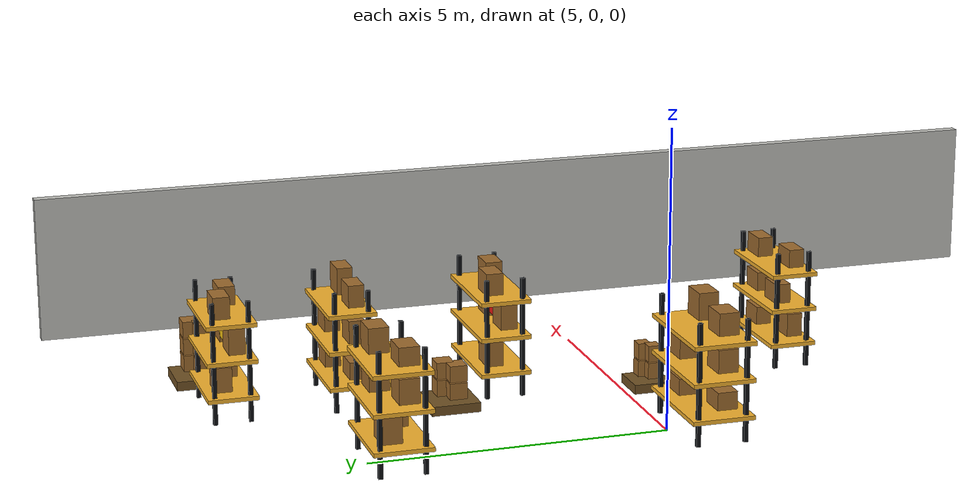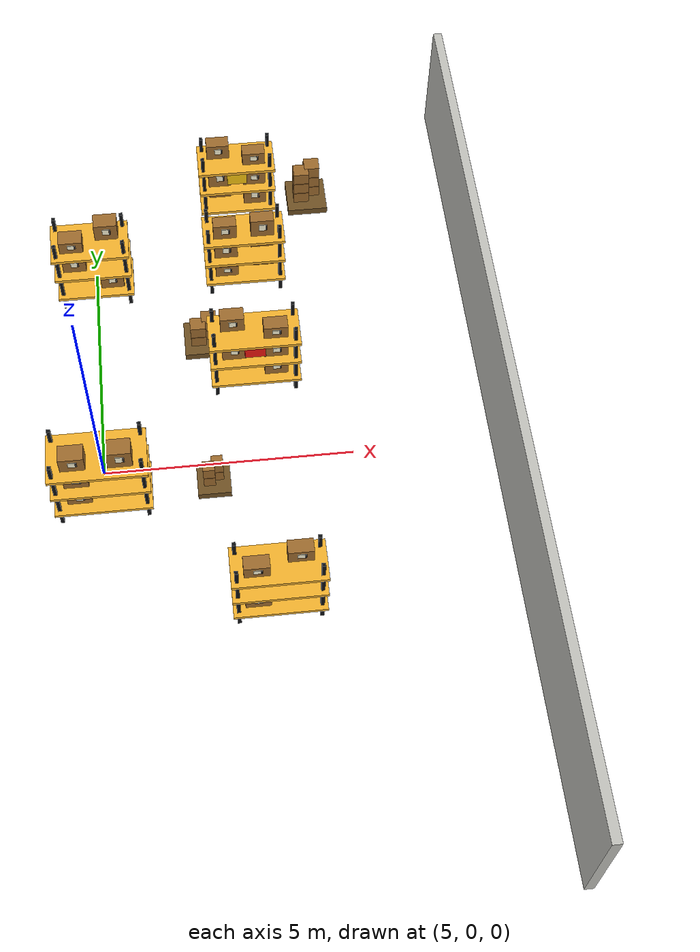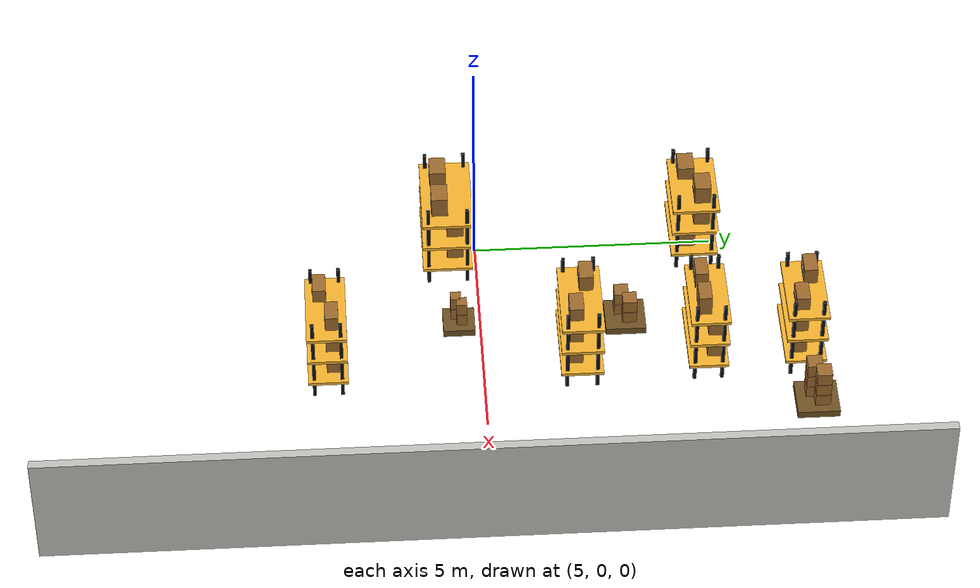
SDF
<sdf version="1.9">
 <world name="lidar_random_warehouse">
  <model name="right_wall">
   <static>true</static>
   <pose>12.910 0.000 1.300 0 0 0</pose>
   <link name="link">
    <collision name="collision"><geometry><box><size>0.180 18.000 2.600</size></box></geometry></collision>
    <visual name="visual">
     <geometry><box><size>0.180 18.000 2.600</size></box></geometry>
     <material><ambient>0.66 0.66 0.64 1</ambient><diffuse>0.76 0.76 0.74 1</diffuse></material>
    </visual>
   </link>
  </model>
  <model name="shelf_10">
   <static>true</static>
   <pose>8.200 -3.200 0 0 0 0</pose>
   <link name="link">
    <collision name="collision">
     <pose>0 0 1.025 0 0 0</pose>
     <geometry><box><size>1.629 0.642 2.050</size></box></geometry>
    </collision>
    <visual name="post_0">
     <pose>-0.779 -0.286 1.025 0 0 0</pose>
     <geometry><box><size>0.070 0.070 2.050</size></box></geometry>
     <material><ambient>0.03 0.04 0.05 1</ambient><diffuse>0.05 0.06 0.07 1</diffuse></material>
    </visual>
    <visual name="post_1">
     <pose>-0.779 0.286 1.025 0 0 0</pose>
     <geometry><box><size>0.070 0.070 2.050</size></box></geometry>
     <material><ambient>0.03 0.04 0.05 1</ambient><diffuse>0.05 0.06 0.07 1</diffuse></material>
    </visual>
    <visual name="post_2">
     <pose>0.779 -0.286 1.025 0 0 0</pose>
     <geometry><box><size>0.070 0.070 2.050</size></box></geometry>
     <material><ambient>0.03 0.04 0.05 1</ambient><diffuse>0.05 0.06 0.07 1</diffuse></material>
    </visual>
    <visual name="post_3">
     <pose>0.779 0.286 1.025 0 0 0</pose>
     <geometry><box><size>0.070 0.070 2.050</size></box></geometry>
     <material><ambient>0.03 0.04 0.05 1</ambient><diffuse>0.05 0.06 0.07 1</diffuse></material>
    </visual>
    <visual name="deck_1">
     <pose>0.000 0.000 0.420 0 0 0</pose>
     <geometry><box><size>1.769 0.822 0.070</size></box></geometry>
     <material><ambient>0.70 0.52 0.18 1</ambient><diffuse>0.96 0.70 0.18 1</diffuse></material>
    </visual>
    <visual name="box_1_-0.4">
     <pose>-0.407 -0.116 0.701 0 0 0</pose>
     <geometry><box><size>0.480 0.270 0.402</size></box></geometry>
     <material><ambient>0.44 0.28 0.11 1</ambient><diffuse>0.62 0.42 0.18 1</diffuse></material>
    </visual>
    <visual name="label_1_-0.4">
     <pose>-0.407 -0.255 0.729 0 0 0</pose>
     <geometry><box><size>0.134 0.012 0.153</size></box></geometry>
     <material><ambient>0.86 0.86 0.76 1</ambient><diffuse>0.98 0.96 0.84 1</diffuse></material>
    </visual>
    <visual name="barcode_1_-0.4">
     <pose>-0.321 -0.259 0.729 0 0 0</pose>
     <geometry><box><size>0.029 0.014 0.137</size></box></geometry>
     <material><ambient>0.02 0.02 0.02 1</ambient><diffuse>0.02 0.02 0.02 1</diffuse></material>
    </visual>
    <visual name="box_1_0.4">
     <pose>0.407 0.116 0.658 0 0 0</pose>
     <geometry><box><size>0.480 0.270 0.316</size></box></geometry>
     <material><ambient>0.44 0.28 0.11 1</ambient><diffuse>0.62 0.42 0.18 1</diffuse></material>
    </visual>
    <visual name="label_1_0.4">
     <pose>0.407 -0.023 0.685 0 0 0</pose>
     <geometry><box><size>0.134 0.012 0.120</size></box></geometry>
     <material><ambient>0.86 0.86 0.76 1</ambient><diffuse>0.98 0.96 0.84 1</diffuse></material>
    </visual>
    <visual name="barcode_1_0.4">
     <pose>0.494 -0.027 0.685 0 0 0</pose>
     <geometry><box><size>0.029 0.014 0.108</size></box></geometry>
     <material><ambient>0.02 0.02 0.02 1</ambient><diffuse>0.02 0.02 0.02 1</diffuse></material>
    </visual>
    <visual name="deck_2">
     <pose>0.000 0.000 1.040 0 0 0</pose>
     <geometry><box><size>1.769 0.822 0.070</size></box></geometry>
     <material><ambient>0.70 0.52 0.18 1</ambient><diffuse>0.96 0.70 0.18 1</diffuse></material>
    </visual>
    <visual name="box_2_-0.4">
     <pose>-0.407 0.116 1.288 0 0 0</pose>
     <geometry><box><size>0.480 0.270 0.336</size></box></geometry>
     <material><ambient>0.44 0.28 0.11 1</ambient><diffuse>0.62 0.42 0.18 1</diffuse></material>
    </visual>
    <visual name="label_2_-0.4">
     <pose>-0.407 -0.023 1.315 0 0 0</pose>
     <geometry><box><size>0.134 0.012 0.128</size></box></geometry>
     <material><ambient>0.86 0.86 0.76 1</ambient><diffuse>0.98 0.96 0.84 1</diffuse></material>
    </visual>
    <visual name="barcode_2_-0.4">
     <pose>-0.321 -0.027 1.315 0 0 0</pose>
     <geometry><box><size>0.029 0.014 0.114</size></box></geometry>
     <material><ambient>0.02 0.02 0.02 1</ambient><diffuse>0.02 0.02 0.02 1</diffuse></material>
    </visual>
    <visual name="box_2_0.4">
     <pose>0.407 0.116 1.282 0 0 0</pose>
     <geometry><box><size>0.480 0.270 0.325</size></box></geometry>
     <material><ambient>0.44 0.28 0.11 1</ambient><diffuse>0.62 0.42 0.18 1</diffuse></material>
    </visual>
    <visual name="label_2_0.4">
     <pose>0.407 -0.023 1.309 0 0 0</pose>
     <geometry><box><size>0.134 0.012 0.123</size></box></geometry>
     <material><ambient>0.86 0.86 0.76 1</ambient><diffuse>0.98 0.96 0.84 1</diffuse></material>
    </visual>
    <visual name="barcode_2_0.4">
     <pose>0.494 -0.027 1.309 0 0 0</pose>
     <geometry><box><size>0.029 0.014 0.110</size></box></geometry>
     <material><ambient>0.02 0.02 0.02 1</ambient><diffuse>0.02 0.02 0.02 1</diffuse></material>
    </visual>
    <visual name="deck_3">
     <pose>0.000 0.000 1.660 0 0 0</pose>
     <geometry><box><size>1.769 0.822 0.070</size></box></geometry>
     <material><ambient>0.70 0.52 0.18 1</ambient><diffuse>0.96 0.70 0.18 1</diffuse></material>
    </visual>
    <visual name="box_3_-0.4">
     <pose>-0.407 -0.116 1.898 0 0 0</pose>
     <geometry><box><size>0.480 0.270 0.315</size></box></geometry>
     <material><ambient>0.44 0.28 0.11 1</ambient><diffuse>0.62 0.42 0.18 1</diffuse></material>
    </visual>
    <visual name="label_3_-0.4">
     <pose>-0.407 -0.255 1.924 0 0 0</pose>
     <geometry><box><size>0.134 0.012 0.120</size></box></geometry>
     <material><ambient>0.86 0.86 0.76 1</ambient><diffuse>0.98 0.96 0.84 1</diffuse></material>
    </visual>
    <visual name="barcode_3_-0.4">
     <pose>-0.321 -0.259 1.924 0 0 0</pose>
     <geometry><box><size>0.029 0.014 0.107</size></box></geometry>
     <material><ambient>0.02 0.02 0.02 1</ambient><diffuse>0.02 0.02 0.02 1</diffuse></material>
    </visual>
    <visual name="box_3_0.4">
     <pose>0.407 0.116 1.909 0 0 0</pose>
     <geometry><box><size>0.480 0.270 0.338</size></box></geometry>
     <material><ambient>0.44 0.28 0.11 1</ambient><diffuse>0.62 0.42 0.18 1</diffuse></material>
    </visual>
    <visual name="label_3_0.4">
     <pose>0.407 -0.023 1.936 0 0 0</pose>
     <geometry><box><size>0.134 0.012 0.129</size></box></geometry>
     <material><ambient>0.86 0.86 0.76 1</ambient><diffuse>0.98 0.96 0.84 1</diffuse></material>
    </visual>
    <visual name="barcode_3_0.4">
     <pose>0.494 -0.027 1.936 0 0 0</pose>
     <geometry><box><size>0.029 0.014 0.115</size></box></geometry>
     <material><ambient>0.02 0.02 0.02 1</ambient><diffuse>0.02 0.02 0.02 1</diffuse></material>
    </visual>
   </link>
  </model>
  <model name="shelf_13">
   <static>true</static>
   <pose>5.000 -0.600 0 0 0 0</pose>
   <link name="link">
    <collision name="collision">
     <pose>0 0 1.025 0 0 0</pose>
     <geometry><box><size>1.766 0.877 2.050</size></box></geometry>
    </collision>
    <visual name="post_0">
     <pose>-0.848 -0.404 1.025 0 0 0</pose>
     <geometry><box><size>0.070 0.070 2.050</size></box></geometry>
     <material><ambient>0.03 0.04 0.05 1</ambient><diffuse>0.05 0.06 0.07 1</diffuse></material>
    </visual>
    <visual name="post_1">
     <pose>-0.848 0.404 1.025 0 0 0</pose>
     <geometry><box><size>0.070 0.070 2.050</size></box></geometry>
     <material><ambient>0.03 0.04 0.05 1</ambient><diffuse>0.05 0.06 0.07 1</diffuse></material>
    </visual>
    <visual name="post_2">
     <pose>0.848 -0.404 1.025 0 0 0</pose>
     <geometry><box><size>0.070 0.070 2.050</size></box></geometry>
     <material><ambient>0.03 0.04 0.05 1</ambient><diffuse>0.05 0.06 0.07 1</diffuse></material>
    </visual>
    <visual name="post_3">
     <pose>0.848 0.404 1.025 0 0 0</pose>
     <geometry><box><size>0.070 0.070 2.050</size></box></geometry>
     <material><ambient>0.03 0.04 0.05 1</ambient><diffuse>0.05 0.06 0.07 1</diffuse></material>
    </visual>
    <visual name="deck_1">
     <pose>0.000 0.000 0.420 0 0 0</pose>
     <geometry><box><size>1.906 1.057 0.070</size></box></geometry>
     <material><ambient>0.70 0.52 0.18 1</ambient><diffuse>0.96 0.70 0.18 1</diffuse></material>
    </visual>
    <visual name="box_1_-0.4">
     <pose>-0.442 -0.158 0.649 0 0 0</pose>
     <geometry><box><size>0.480 0.340 0.297</size></box></geometry>
     <material><ambient>0.44 0.28 0.11 1</ambient><diffuse>0.62 0.42 0.18 1</diffuse></material>
    </visual>
    <visual name="label_1_-0.4">
     <pose>-0.442 -0.332 0.674 0 0 0</pose>
     <geometry><box><size>0.134 0.012 0.113</size></box></geometry>
     <material><ambient>0.86 0.86 0.76 1</ambient><diffuse>0.98 0.96 0.84 1</diffuse></material>
    </visual>
    <visual name="barcode_1_-0.4">
     <pose>-0.355 -0.336 0.674 0 0 0</pose>
     <geometry><box><size>0.029 0.014 0.101</size></box></geometry>
     <material><ambient>0.02 0.02 0.02 1</ambient><diffuse>0.02 0.02 0.02 1</diffuse></material>
    </visual>
    <visual name="box_1_0.4">
     <pose>0.442 0.158 0.640 0 0 0</pose>
     <geometry><box><size>0.480 0.340 0.280</size></box></geometry>
     <material><ambient>0.44 0.28 0.11 1</ambient><diffuse>0.62 0.42 0.18 1</diffuse></material>
    </visual>
    <visual name="label_1_0.4">
     <pose>0.442 -0.016 0.666 0 0 0</pose>
     <geometry><box><size>0.134 0.012 0.107</size></box></geometry>
     <material><ambient>0.86 0.86 0.76 1</ambient><diffuse>0.98 0.96 0.84 1</diffuse></material>
    </visual>
    <visual name="barcode_1_0.4">
     <pose>0.528 -0.020 0.666 0 0 0</pose>
     <geometry><box><size>0.029 0.014 0.095</size></box></geometry>
     <material><ambient>0.02 0.02 0.02 1</ambient><diffuse>0.02 0.02 0.02 1</diffuse></material>
    </visual>
    <visual name="deck_2">
     <pose>0.000 0.000 1.040 0 0 0</pose>
     <geometry><box><size>1.906 1.057 0.070</size></box></geometry>
     <material><ambient>0.70 0.52 0.18 1</ambient><diffuse>0.96 0.70 0.18 1</diffuse></material>
    </visual>
    <visual name="box_2_-0.4">
     <pose>-0.442 -0.158 1.315 0 0 0</pose>
     <geometry><box><size>0.480 0.340 0.390</size></box></geometry>
     <material><ambient>0.44 0.28 0.11 1</ambient><diffuse>0.62 0.42 0.18 1</diffuse></material>
    </visual>
    <visual name="label_2_-0.4">
     <pose>-0.442 -0.332 1.343 0 0 0</pose>
     <geometry><box><size>0.134 0.012 0.148</size></box></geometry>
     <material><ambient>0.86 0.86 0.76 1</ambient><diffuse>0.98 0.96 0.84 1</diffuse></material>
    </visual>
    <visual name="barcode_2_-0.4">
     <pose>-0.355 -0.336 1.343 0 0 0</pose>
     <geometry><box><size>0.029 0.014 0.133</size></box></geometry>
     <material><ambient>0.02 0.02 0.02 1</ambient><diffuse>0.02 0.02 0.02 1</diffuse></material>
    </visual>
    <visual name="box_2_0.4">
     <pose>0.442 0.158 1.293 0 0 0</pose>
     <geometry><box><size>0.480 0.340 0.347</size></box></geometry>
     <material><ambient>0.44 0.28 0.11 1</ambient><diffuse>0.62 0.42 0.18 1</diffuse></material>
    </visual>
    <visual name="label_2_0.4">
     <pose>0.442 -0.016 1.320 0 0 0</pose>
     <geometry><box><size>0.134 0.012 0.132</size></box></geometry>
     <material><ambient>0.86 0.86 0.76 1</ambient><diffuse>0.98 0.96 0.84 1</diffuse></material>
    </visual>
    <visual name="barcode_2_0.4">
     <pose>0.528 -0.020 1.320 0 0 0</pose>
     <geometry><box><size>0.029 0.014 0.118</size></box></geometry>
     <material><ambient>0.02 0.02 0.02 1</ambient><diffuse>0.02 0.02 0.02 1</diffuse></material>
    </visual>
    <visual name="deck_3">
     <pose>0.000 0.000 1.660 0 0 0</pose>
     <geometry><box><size>1.906 1.057 0.070</size></box></geometry>
     <material><ambient>0.70 0.52 0.18 1</ambient><diffuse>0.96 0.70 0.18 1</diffuse></material>
    </visual>
    <visual name="box_3_-0.4">
     <pose>-0.442 -0.158 1.928 0 0 0</pose>
     <geometry><box><size>0.480 0.340 0.375</size></box></geometry>
     <material><ambient>0.44 0.28 0.11 1</ambient><diffuse>0.62 0.42 0.18 1</diffuse></material>
    </visual>
    <visual name="label_3_-0.4">
     <pose>-0.442 -0.332 1.955 0 0 0</pose>
     <geometry><box><size>0.134 0.012 0.143</size></box></geometry>
     <material><ambient>0.86 0.86 0.76 1</ambient><diffuse>0.98 0.96 0.84 1</diffuse></material>
    </visual>
    <visual name="barcode_3_-0.4">
     <pose>-0.355 -0.336 1.955 0 0 0</pose>
     <geometry><box><size>0.029 0.014 0.128</size></box></geometry>
     <material><ambient>0.02 0.02 0.02 1</ambient><diffuse>0.02 0.02 0.02 1</diffuse></material>
    </visual>
    <visual name="box_3_0.4">
     <pose>0.442 -0.158 1.968 0 0 0</pose>
     <geometry><box><size>0.480 0.340 0.456</size></box></geometry>
     <material><ambient>0.44 0.28 0.11 1</ambient><diffuse>0.62 0.42 0.18 1</diffuse></material>
    </visual>
    <visual name="label_3_0.4">
     <pose>0.442 -0.332 1.997 0 0 0</pose>
     <geometry><box><size>0.134 0.012 0.173</size></box></geometry>
     <material><ambient>0.86 0.86 0.76 1</ambient><diffuse>0.98 0.96 0.84 1</diffuse></material>
    </visual>
    <visual name="barcode_3_0.4">
     <pose>0.528 -0.336 1.997 0 0 0</pose>
     <geometry><box><size>0.029 0.014 0.155</size></box></geometry>
     <material><ambient>0.02 0.02 0.02 1</ambient><diffuse>0.02 0.02 0.02 1</diffuse></material>
    </visual>
   </link>
  </model>
  <model name="shelf_17">
   <static>true</static>
   <pose>8.200 2.000 0 0 0 0</pose>
   <link name="link">
    <collision name="collision">
     <pose>0 0 1.025 0 0 0</pose>
     <geometry><box><size>1.692 0.691 2.050</size></box></geometry>
    </collision>
    <visual name="post_0">
     <pose>-0.811 -0.311 1.025 0 0 0</pose>
     <geometry><box><size>0.070 0.070 2.050</size></box></geometry>
     <material><ambient>0.03 0.04 0.05 1</ambient><diffuse>0.05 0.06 0.07 1</diffuse></material>
    </visual>
    <visual name="post_1">
     <pose>-0.811 0.311 1.025 0 0 0</pose>
     <geometry><box><size>0.070 0.070 2.050</size></box></geometry>
     <material><ambient>0.03 0.04 0.05 1</ambient><diffuse>0.05 0.06 0.07 1</diffuse></material>
    </visual>
    <visual name="post_2">
     <pose>0.811 -0.311 1.025 0 0 0</pose>
     <geometry><box><size>0.070 0.070 2.050</size></box></geometry>
     <material><ambient>0.03 0.04 0.05 1</ambient><diffuse>0.05 0.06 0.07 1</diffuse></material>
    </visual>
    <visual name="post_3">
     <pose>0.811 0.311 1.025 0 0 0</pose>
     <geometry><box><size>0.070 0.070 2.050</size></box></geometry>
     <material><ambient>0.03 0.04 0.05 1</ambient><diffuse>0.05 0.06 0.07 1</diffuse></material>
    </visual>
    <visual name="deck_1">
     <pose>0.000 0.000 0.420 0 0 0</pose>
     <geometry><box><size>1.832 0.871 0.070</size></box></geometry>
     <material><ambient>0.70 0.52 0.18 1</ambient><diffuse>0.96 0.70 0.18 1</diffuse></material>
    </visual>
    <visual name="box_1_-0.4">
     <pose>-0.423 0.124 0.710 0 0 0</pose>
     <geometry><box><size>0.480 0.290 0.420</size></box></geometry>
     <material><ambient>0.44 0.28 0.11 1</ambient><diffuse>0.62 0.42 0.18 1</diffuse></material>
    </visual>
    <visual name="label_1_-0.4">
     <pose>-0.423 -0.025 0.739 0 0 0</pose>
     <geometry><box><size>0.134 0.012 0.160</size></box></geometry>
     <material><ambient>0.86 0.86 0.76 1</ambient><diffuse>0.98 0.96 0.84 1</diffuse></material>
    </visual>
    <visual name="barcode_1_-0.4">
     <pose>-0.337 -0.029 0.739 0 0 0</pose>
     <geometry><box><size>0.029 0.014 0.143</size></box></geometry>
     <material><ambient>0.02 0.02 0.02 1</ambient><diffuse>0.02 0.02 0.02 1</diffuse></material>
    </visual>
    <visual name="box_1_0.4">
     <pose>0.423 -0.124 0.727 0 0 0</pose>
     <geometry><box><size>0.480 0.290 0.455</size></box></geometry>
     <material><ambient>0.44 0.28 0.11 1</ambient><diffuse>0.62 0.42 0.18 1</diffuse></material>
    </visual>
    <visual name="label_1_0.4">
     <pose>0.423 -0.274 0.757 0 0 0</pose>
     <geometry><box><size>0.134 0.012 0.173</size></box></geometry>
     <material><ambient>0.86 0.86 0.76 1</ambient><diffuse>0.98 0.96 0.84 1</diffuse></material>
    </visual>
    <visual name="barcode_1_0.4">
     <pose>0.509 -0.278 0.757 0 0 0</pose>
     <geometry><box><size>0.029 0.014 0.155</size></box></geometry>
     <material><ambient>0.02 0.02 0.02 1</ambient><diffuse>0.02 0.02 0.02 1</diffuse></material>
    </visual>
    <visual name="deck_2">
     <pose>0.000 0.000 1.040 0 0 0</pose>
     <geometry><box><size>1.832 0.871 0.070</size></box></geometry>
     <material><ambient>0.70 0.52 0.18 1</ambient><diffuse>0.96 0.70 0.18 1</diffuse></material>
    </visual>
    <visual name="box_2_-0.4">
     <pose>-0.423 -0.124 1.345 0 0 0</pose>
     <geometry><box><size>0.480 0.290 0.450</size></box></geometry>
     <material><ambient>0.44 0.28 0.11 1</ambient><diffuse>0.62 0.42 0.18 1</diffuse></material>
    </visual>
    <visual name="label_2_-0.4">
     <pose>-0.423 -0.274 1.374 0 0 0</pose>
     <geometry><box><size>0.134 0.012 0.171</size></box></geometry>
     <material><ambient>0.86 0.86 0.76 1</ambient><diffuse>0.98 0.96 0.84 1</diffuse></material>
    </visual>
    <visual name="barcode_2_-0.4">
     <pose>-0.337 -0.278 1.374 0 0 0</pose>
     <geometry><box><size>0.029 0.014 0.153</size></box></geometry>
     <material><ambient>0.02 0.02 0.02 1</ambient><diffuse>0.02 0.02 0.02 1</diffuse></material>
    </visual>
    <visual name="box_2_0.4">
     <pose>0.423 -0.124 1.295 0 0 0</pose>
     <geometry><box><size>0.480 0.290 0.350</size></box></geometry>
     <material><ambient>0.44 0.28 0.11 1</ambient><diffuse>0.62 0.42 0.18 1</diffuse></material>
    </visual>
    <visual name="label_2_0.4">
     <pose>0.423 -0.274 1.322 0 0 0</pose>
     <geometry><box><size>0.134 0.012 0.133</size></box></geometry>
     <material><ambient>0.86 0.86 0.76 1</ambient><diffuse>0.98 0.96 0.84 1</diffuse></material>
    </visual>
    <visual name="barcode_2_0.4">
     <pose>0.509 -0.278 1.322 0 0 0</pose>
     <geometry><box><size>0.029 0.014 0.119</size></box></geometry>
     <material><ambient>0.02 0.02 0.02 1</ambient><diffuse>0.02 0.02 0.02 1</diffuse></material>
    </visual>
    <visual name="deck_3">
     <pose>0.000 0.000 1.660 0 0 0</pose>
     <geometry><box><size>1.832 0.871 0.070</size></box></geometry>
     <material><ambient>0.70 0.52 0.18 1</ambient><diffuse>0.96 0.70 0.18 1</diffuse></material>
    </visual>
    <visual name="box_3_-0.4">
     <pose>-0.423 0.124 1.926 0 0 0</pose>
     <geometry><box><size>0.480 0.290 0.372</size></box></geometry>
     <material><ambient>0.44 0.28 0.11 1</ambient><diffuse>0.62 0.42 0.18 1</diffuse></material>
    </visual>
    <visual name="label_3_-0.4">
     <pose>-0.423 -0.025 1.953 0 0 0</pose>
     <geometry><box><size>0.134 0.012 0.141</size></box></geometry>
     <material><ambient>0.86 0.86 0.76 1</ambient><diffuse>0.98 0.96 0.84 1</diffuse></material>
    </visual>
    <visual name="barcode_3_-0.4">
     <pose>-0.337 -0.029 1.953 0 0 0</pose>
     <geometry><box><size>0.029 0.014 0.126</size></box></geometry>
     <material><ambient>0.02 0.02 0.02 1</ambient><diffuse>0.02 0.02 0.02 1</diffuse></material>
    </visual>
    <visual name="box_3_0.4">
     <pose>0.423 -0.124 1.899 0 0 0</pose>
     <geometry><box><size>0.480 0.290 0.319</size></box></geometry>
     <material><ambient>0.44 0.28 0.11 1</ambient><diffuse>0.62 0.42 0.18 1</diffuse></material>
    </visual>
    <visual name="label_3_0.4">
     <pose>0.423 -0.274 1.926 0 0 0</pose>
     <geometry><box><size>0.134 0.012 0.121</size></box></geometry>
     <material><ambient>0.86 0.86 0.76 1</ambient><diffuse>0.98 0.96 0.84 1</diffuse></material>
    </visual>
    <visual name="barcode_3_0.4">
     <pose>0.509 -0.278 1.926 0 0 0</pose>
     <geometry><box><size>0.029 0.014 0.108</size></box></geometry>
     <material><ambient>0.02 0.02 0.02 1</ambient><diffuse>0.02 0.02 0.02 1</diffuse></material>
    </visual>
   </link>
  </model>
  <model name="shelf_21">
   <static>true</static>
   <pose>5.000 4.600 0 0 0 0</pose>
   <link name="link">
    <collision name="collision">
     <pose>0 0 1.025 0 0 0</pose>
     <geometry><box><size>1.465 0.800 2.050</size></box></geometry>
    </collision>
    <visual name="post_0">
     <pose>-0.698 -0.365 1.025 0 0 0</pose>
     <geometry><box><size>0.070 0.070 2.050</size></box></geometry>
     <material><ambient>0.03 0.04 0.05 1</ambient><diffuse>0.05 0.06 0.07 1</diffuse></material>
    </visual>
    <visual name="post_1">
     <pose>-0.698 0.365 1.025 0 0 0</pose>
     <geometry><box><size>0.070 0.070 2.050</size></box></geometry>
     <material><ambient>0.03 0.04 0.05 1</ambient><diffuse>0.05 0.06 0.07 1</diffuse></material>
    </visual>
    <visual name="post_2">
     <pose>0.698 -0.365 1.025 0 0 0</pose>
     <geometry><box><size>0.070 0.070 2.050</size></box></geometry>
     <material><ambient>0.03 0.04 0.05 1</ambient><diffuse>0.05 0.06 0.07 1</diffuse></material>
    </visual>
    <visual name="post_3">
     <pose>0.698 0.365 1.025 0 0 0</pose>
     <geometry><box><size>0.070 0.070 2.050</size></box></geometry>
     <material><ambient>0.03 0.04 0.05 1</ambient><diffuse>0.05 0.06 0.07 1</diffuse></material>
    </visual>
    <visual name="deck_1">
     <pose>0.000 0.000 0.420 0 0 0</pose>
     <geometry><box><size>1.605 0.980 0.070</size></box></geometry>
     <material><ambient>0.70 0.52 0.18 1</ambient><diffuse>0.96 0.70 0.18 1</diffuse></material>
    </visual>
    <visual name="box_1_-0.4">
     <pose>-0.366 0.144 0.728 0 0 0</pose>
     <geometry><box><size>0.480 0.336 0.455</size></box></geometry>
     <material><ambient>0.44 0.28 0.11 1</ambient><diffuse>0.62 0.42 0.18 1</diffuse></material>
    </visual>
    <visual name="label_1_-0.4">
     <pose>-0.366 -0.028 0.757 0 0 0</pose>
     <geometry><box><size>0.134 0.012 0.173</size></box></geometry>
     <material><ambient>0.86 0.86 0.76 1</ambient><diffuse>0.98 0.96 0.84 1</diffuse></material>
    </visual>
    <visual name="barcode_1_-0.4">
     <pose>-0.280 -0.032 0.757 0 0 0</pose>
     <geometry><box><size>0.029 0.014 0.155</size></box></geometry>
     <material><ambient>0.02 0.02 0.02 1</ambient><diffuse>0.02 0.02 0.02 1</diffuse></material>
    </visual>
    <visual name="box_1_0.4">
     <pose>0.366 -0.144 0.715 0 0 0</pose>
     <geometry><box><size>0.480 0.336 0.431</size></box></geometry>
     <material><ambient>0.44 0.28 0.11 1</ambient><diffuse>0.62 0.42 0.18 1</diffuse></material>
    </visual>
    <visual name="label_1_0.4">
     <pose>0.366 -0.316 0.744 0 0 0</pose>
     <geometry><box><size>0.134 0.012 0.164</size></box></geometry>
     <material><ambient>0.86 0.86 0.76 1</ambient><diffuse>0.98 0.96 0.84 1</diffuse></material>
    </visual>
    <visual name="barcode_1_0.4">
     <pose>0.453 -0.320 0.744 0 0 0</pose>
     <geometry><box><size>0.029 0.014 0.147</size></box></geometry>
     <material><ambient>0.02 0.02 0.02 1</ambient><diffuse>0.02 0.02 0.02 1</diffuse></material>
    </visual>
    <visual name="deck_2">
     <pose>0.000 0.000 1.040 0 0 0</pose>
     <geometry><box><size>1.605 0.980 0.070</size></box></geometry>
     <material><ambient>0.70 0.52 0.18 1</ambient><diffuse>0.96 0.70 0.18 1</diffuse></material>
    </visual>
    <visual name="box_2_-0.4">
     <pose>-0.366 -0.144 1.327 0 0 0</pose>
     <geometry><box><size>0.480 0.336 0.415</size></box></geometry>
     <material><ambient>0.44 0.28 0.11 1</ambient><diffuse>0.62 0.42 0.18 1</diffuse></material>
    </visual>
    <visual name="label_2_-0.4">
     <pose>-0.366 -0.316 1.356 0 0 0</pose>
     <geometry><box><size>0.134 0.012 0.158</size></box></geometry>
     <material><ambient>0.86 0.86 0.76 1</ambient><diffuse>0.98 0.96 0.84 1</diffuse></material>
    </visual>
    <visual name="barcode_2_-0.4">
     <pose>-0.280 -0.320 1.356 0 0 0</pose>
     <geometry><box><size>0.029 0.014 0.141</size></box></geometry>
     <material><ambient>0.02 0.02 0.02 1</ambient><diffuse>0.02 0.02 0.02 1</diffuse></material>
    </visual>
    <visual name="box_2_0.4">
     <pose>0.366 0.144 1.302 0 0 0</pose>
     <geometry><box><size>0.480 0.336 0.365</size></box></geometry>
     <material><ambient>0.44 0.28 0.11 1</ambient><diffuse>0.62 0.42 0.18 1</diffuse></material>
    </visual>
    <visual name="label_2_0.4">
     <pose>0.366 -0.028 1.330 0 0 0</pose>
     <geometry><box><size>0.134 0.012 0.139</size></box></geometry>
     <material><ambient>0.86 0.86 0.76 1</ambient><diffuse>0.98 0.96 0.84 1</diffuse></material>
    </visual>
    <visual name="barcode_2_0.4">
     <pose>0.453 -0.032 1.330 0 0 0</pose>
     <geometry><box><size>0.029 0.014 0.124</size></box></geometry>
     <material><ambient>0.02 0.02 0.02 1</ambient><diffuse>0.02 0.02 0.02 1</diffuse></material>
    </visual>
    <visual name="deck_3">
     <pose>0.000 0.000 1.660 0 0 0</pose>
     <geometry><box><size>1.605 0.980 0.070</size></box></geometry>
     <material><ambient>0.70 0.52 0.18 1</ambient><diffuse>0.96 0.70 0.18 1</diffuse></material>
    </visual>
    <visual name="box_3_-0.4">
     <pose>-0.366 -0.144 1.891 0 0 0</pose>
     <geometry><box><size>0.480 0.336 0.303</size></box></geometry>
     <material><ambient>0.44 0.28 0.11 1</ambient><diffuse>0.62 0.42 0.18 1</diffuse></material>
    </visual>
    <visual name="label_3_-0.4">
     <pose>-0.366 -0.316 1.917 0 0 0</pose>
     <geometry><box><size>0.134 0.012 0.115</size></box></geometry>
     <material><ambient>0.86 0.86 0.76 1</ambient><diffuse>0.98 0.96 0.84 1</diffuse></material>
    </visual>
    <visual name="barcode_3_-0.4">
     <pose>-0.280 -0.320 1.917 0 0 0</pose>
     <geometry><box><size>0.029 0.014 0.103</size></box></geometry>
     <material><ambient>0.02 0.02 0.02 1</ambient><diffuse>0.02 0.02 0.02 1</diffuse></material>
    </visual>
    <visual name="box_3_0.4">
     <pose>0.366 0.144 1.947 0 0 0</pose>
     <geometry><box><size>0.480 0.336 0.414</size></box></geometry>
     <material><ambient>0.44 0.28 0.11 1</ambient><diffuse>0.62 0.42 0.18 1</diffuse></material>
    </visual>
    <visual name="label_3_0.4">
     <pose>0.366 -0.028 1.975 0 0 0</pose>
     <geometry><box><size>0.134 0.012 0.157</size></box></geometry>
     <material><ambient>0.86 0.86 0.76 1</ambient><diffuse>0.98 0.96 0.84 1</diffuse></material>
    </visual>
    <visual name="barcode_3_0.4">
     <pose>0.453 -0.032 1.975 0 0 0</pose>
     <geometry><box><size>0.029 0.014 0.141</size></box></geometry>
     <material><ambient>0.02 0.02 0.02 1</ambient><diffuse>0.02 0.02 0.02 1</diffuse></material>
    </visual>
   </link>
  </model>
  <model name="shelf_22">
   <static>true</static>
   <pose>8.200 4.600 0 0 0 0</pose>
   <link name="link">
    <collision name="collision">
     <pose>0 0 1.025 0 0 0</pose>
     <geometry><box><size>1.551 0.633 2.050</size></box></geometry>
    </collision>
    <visual name="post_0">
     <pose>-0.740 -0.282 1.025 0 0 0</pose>
     <geometry><box><size>0.070 0.070 2.050</size></box></geometry>
     <material><ambient>0.03 0.04 0.05 1</ambient><diffuse>0.05 0.06 0.07 1</diffuse></material>
    </visual>
    <visual name="post_1">
     <pose>-0.740 0.282 1.025 0 0 0</pose>
     <geometry><box><size>0.070 0.070 2.050</size></box></geometry>
     <material><ambient>0.03 0.04 0.05 1</ambient><diffuse>0.05 0.06 0.07 1</diffuse></material>
    </visual>
    <visual name="post_2">
     <pose>0.740 -0.282 1.025 0 0 0</pose>
     <geometry><box><size>0.070 0.070 2.050</size></box></geometry>
     <material><ambient>0.03 0.04 0.05 1</ambient><diffuse>0.05 0.06 0.07 1</diffuse></material>
    </visual>
    <visual name="post_3">
     <pose>0.740 0.282 1.025 0 0 0</pose>
     <geometry><box><size>0.070 0.070 2.050</size></box></geometry>
     <material><ambient>0.03 0.04 0.05 1</ambient><diffuse>0.05 0.06 0.07 1</diffuse></material>
    </visual>
    <visual name="deck_1">
     <pose>0.000 0.000 0.420 0 0 0</pose>
     <geometry><box><size>1.691 0.813 0.070</size></box></geometry>
     <material><ambient>0.70 0.52 0.18 1</ambient><diffuse>0.96 0.70 0.18 1</diffuse></material>
    </visual>
    <visual name="box_1_-0.4">
     <pose>-0.388 -0.114 0.649 0 0 0</pose>
     <geometry><box><size>0.480 0.266 0.297</size></box></geometry>
     <material><ambient>0.44 0.28 0.11 1</ambient><diffuse>0.62 0.42 0.18 1</diffuse></material>
    </visual>
    <visual name="label_1_-0.4">
     <pose>-0.388 -0.251 0.674 0 0 0</pose>
     <geometry><box><size>0.134 0.012 0.113</size></box></geometry>
     <material><ambient>0.86 0.86 0.76 1</ambient><diffuse>0.98 0.96 0.84 1</diffuse></material>
    </visual>
    <visual name="barcode_1_-0.4">
     <pose>-0.301 -0.255 0.674 0 0 0</pose>
     <geometry><box><size>0.029 0.014 0.101</size></box></geometry>
     <material><ambient>0.02 0.02 0.02 1</ambient><diffuse>0.02 0.02 0.02 1</diffuse></material>
    </visual>
    <visual name="box_1_0.4">
     <pose>0.388 0.114 0.640 0 0 0</pose>
     <geometry><box><size>0.480 0.266 0.280</size></box></geometry>
     <material><ambient>0.44 0.28 0.11 1</ambient><diffuse>0.62 0.42 0.18 1</diffuse></material>
    </visual>
    <visual name="label_1_0.4">
     <pose>0.388 -0.023 0.666 0 0 0</pose>
     <geometry><box><size>0.134 0.012 0.107</size></box></geometry>
     <material><ambient>0.86 0.86 0.76 1</ambient><diffuse>0.98 0.96 0.84 1</diffuse></material>
    </visual>
    <visual name="barcode_1_0.4">
     <pose>0.474 -0.027 0.666 0 0 0</pose>
     <geometry><box><size>0.029 0.014 0.095</size></box></geometry>
     <material><ambient>0.02 0.02 0.02 1</ambient><diffuse>0.02 0.02 0.02 1</diffuse></material>
    </visual>
    <visual name="deck_2">
     <pose>0.000 0.000 1.040 0 0 0</pose>
     <geometry><box><size>1.691 0.813 0.070</size></box></geometry>
     <material><ambient>0.70 0.52 0.18 1</ambient><diffuse>0.96 0.70 0.18 1</diffuse></material>
    </visual>
    <visual name="box_2_-0.4">
     <pose>-0.388 -0.114 1.315 0 0 0</pose>
     <geometry><box><size>0.480 0.266 0.390</size></box></geometry>
     <material><ambient>0.44 0.28 0.11 1</ambient><diffuse>0.62 0.42 0.18 1</diffuse></material>
    </visual>
    <visual name="label_2_-0.4">
     <pose>-0.388 -0.251 1.343 0 0 0</pose>
     <geometry><box><size>0.134 0.012 0.148</size></box></geometry>
     <material><ambient>0.86 0.86 0.76 1</ambient><diffuse>0.98 0.96 0.84 1</diffuse></material>
    </visual>
    <visual name="barcode_2_-0.4">
     <pose>-0.301 -0.255 1.343 0 0 0</pose>
     <geometry><box><size>0.029 0.014 0.133</size></box></geometry>
     <material><ambient>0.02 0.02 0.02 1</ambient><diffuse>0.02 0.02 0.02 1</diffuse></material>
    </visual>
    <visual name="box_2_0.4">
     <pose>0.388 0.114 1.293 0 0 0</pose>
     <geometry><box><size>0.480 0.266 0.347</size></box></geometry>
     <material><ambient>0.44 0.28 0.11 1</ambient><diffuse>0.62 0.42 0.18 1</diffuse></material>
    </visual>
    <visual name="label_2_0.4">
     <pose>0.388 -0.023 1.320 0 0 0</pose>
     <geometry><box><size>0.134 0.012 0.132</size></box></geometry>
     <material><ambient>0.86 0.86 0.76 1</ambient><diffuse>0.98 0.96 0.84 1</diffuse></material>
    </visual>
    <visual name="barcode_2_0.4">
     <pose>0.474 -0.027 1.320 0 0 0</pose>
     <geometry><box><size>0.029 0.014 0.118</size></box></geometry>
     <material><ambient>0.02 0.02 0.02 1</ambient><diffuse>0.02 0.02 0.02 1</diffuse></material>
    </visual>
    <visual name="deck_3">
     <pose>0.000 0.000 1.660 0 0 0</pose>
     <geometry><box><size>1.691 0.813 0.070</size></box></geometry>
     <material><ambient>0.70 0.52 0.18 1</ambient><diffuse>0.96 0.70 0.18 1</diffuse></material>
    </visual>
    <visual name="box_3_-0.4">
     <pose>-0.388 -0.114 1.928 0 0 0</pose>
     <geometry><box><size>0.480 0.266 0.375</size></box></geometry>
     <material><ambient>0.44 0.28 0.11 1</ambient><diffuse>0.62 0.42 0.18 1</diffuse></material>
    </visual>
    <visual name="label_3_-0.4">
     <pose>-0.388 -0.251 1.955 0 0 0</pose>
     <geometry><box><size>0.134 0.012 0.143</size></box></geometry>
     <material><ambient>0.86 0.86 0.76 1</ambient><diffuse>0.98 0.96 0.84 1</diffuse></material>
    </visual>
    <visual name="barcode_3_-0.4">
     <pose>-0.301 -0.255 1.955 0 0 0</pose>
     <geometry><box><size>0.029 0.014 0.128</size></box></geometry>
     <material><ambient>0.02 0.02 0.02 1</ambient><diffuse>0.02 0.02 0.02 1</diffuse></material>
    </visual>
    <visual name="box_3_0.4">
     <pose>0.388 -0.114 1.968 0 0 0</pose>
     <geometry><box><size>0.480 0.266 0.456</size></box></geometry>
     <material><ambient>0.44 0.28 0.11 1</ambient><diffuse>0.62 0.42 0.18 1</diffuse></material>
    </visual>
    <visual name="label_3_0.4">
     <pose>0.388 -0.251 1.997 0 0 0</pose>
     <geometry><box><size>0.134 0.012 0.173</size></box></geometry>
     <material><ambient>0.86 0.86 0.76 1</ambient><diffuse>0.98 0.96 0.84 1</diffuse></material>
    </visual>
    <visual name="barcode_3_0.4">
     <pose>0.474 -0.255 1.997 0 0 0</pose>
     <geometry><box><size>0.029 0.014 0.155</size></box></geometry>
     <material><ambient>0.02 0.02 0.02 1</ambient><diffuse>0.02 0.02 0.02 1</diffuse></material>
    </visual>
   </link>
  </model>
  <model name="shelf_26">
   <static>true</static>
   <pose>8.200 6.600 0 0 0 0</pose>
   <link name="link">
    <collision name="collision">
     <pose>0 0 1.025 0 0 0</pose>
     <geometry><box><size>1.503 0.663 2.050</size></box></geometry>
    </collision>
    <visual name="post_0">
     <pose>-0.716 -0.296 1.025 0 0 0</pose>
     <geometry><box><size>0.070 0.070 2.050</size></box></geometry>
     <material><ambient>0.03 0.04 0.05 1</ambient><diffuse>0.05 0.06 0.07 1</diffuse></material>
    </visual>
    <visual name="post_1">
     <pose>-0.716 0.296 1.025 0 0 0</pose>
     <geometry><box><size>0.070 0.070 2.050</size></box></geometry>
     <material><ambient>0.03 0.04 0.05 1</ambient><diffuse>0.05 0.06 0.07 1</diffuse></material>
    </visual>
    <visual name="post_2">
     <pose>0.716 -0.296 1.025 0 0 0</pose>
     <geometry><box><size>0.070 0.070 2.050</size></box></geometry>
     <material><ambient>0.03 0.04 0.05 1</ambient><diffuse>0.05 0.06 0.07 1</diffuse></material>
    </visual>
    <visual name="post_3">
     <pose>0.716 0.296 1.025 0 0 0</pose>
     <geometry><box><size>0.070 0.070 2.050</size></box></geometry>
     <material><ambient>0.03 0.04 0.05 1</ambient><diffuse>0.05 0.06 0.07 1</diffuse></material>
    </visual>
    <visual name="deck_1">
     <pose>0.000 0.000 0.420 0 0 0</pose>
     <geometry><box><size>1.643 0.843 0.070</size></box></geometry>
     <material><ambient>0.70 0.52 0.18 1</ambient><diffuse>0.96 0.70 0.18 1</diffuse></material>
    </visual>
    <visual name="box_1_-0.4">
     <pose>-0.376 0.119 0.710 0 0 0</pose>
     <geometry><box><size>0.480 0.278 0.420</size></box></geometry>
     <material><ambient>0.44 0.28 0.11 1</ambient><diffuse>0.62 0.42 0.18 1</diffuse></material>
    </visual>
    <visual name="label_1_-0.4">
     <pose>-0.376 -0.024 0.739 0 0 0</pose>
     <geometry><box><size>0.134 0.012 0.160</size></box></geometry>
     <material><ambient>0.86 0.86 0.76 1</ambient><diffuse>0.98 0.96 0.84 1</diffuse></material>
    </visual>
    <visual name="barcode_1_-0.4">
     <pose>-0.289 -0.028 0.739 0 0 0</pose>
     <geometry><box><size>0.029 0.014 0.143</size></box></geometry>
     <material><ambient>0.02 0.02 0.02 1</ambient><diffuse>0.02 0.02 0.02 1</diffuse></material>
    </visual>
    <visual name="box_1_0.4">
     <pose>0.376 -0.119 0.727 0 0 0</pose>
     <geometry><box><size>0.480 0.278 0.455</size></box></geometry>
     <material><ambient>0.44 0.28 0.11 1</ambient><diffuse>0.62 0.42 0.18 1</diffuse></material>
    </visual>
    <visual name="label_1_0.4">
     <pose>0.376 -0.262 0.757 0 0 0</pose>
     <geometry><box><size>0.134 0.012 0.173</size></box></geometry>
     <material><ambient>0.86 0.86 0.76 1</ambient><diffuse>0.98 0.96 0.84 1</diffuse></material>
    </visual>
    <visual name="barcode_1_0.4">
     <pose>0.462 -0.266 0.757 0 0 0</pose>
     <geometry><box><size>0.029 0.014 0.155</size></box></geometry>
     <material><ambient>0.02 0.02 0.02 1</ambient><diffuse>0.02 0.02 0.02 1</diffuse></material>
    </visual>
    <visual name="deck_2">
     <pose>0.000 0.000 1.040 0 0 0</pose>
     <geometry><box><size>1.643 0.843 0.070</size></box></geometry>
     <material><ambient>0.70 0.52 0.18 1</ambient><diffuse>0.96 0.70 0.18 1</diffuse></material>
    </visual>
    <visual name="box_2_-0.4">
     <pose>-0.376 -0.119 1.345 0 0 0</pose>
     <geometry><box><size>0.480 0.278 0.450</size></box></geometry>
     <material><ambient>0.44 0.28 0.11 1</ambient><diffuse>0.62 0.42 0.18 1</diffuse></material>
    </visual>
    <visual name="label_2_-0.4">
     <pose>-0.376 -0.262 1.374 0 0 0</pose>
     <geometry><box><size>0.134 0.012 0.171</size></box></geometry>
     <material><ambient>0.86 0.86 0.76 1</ambient><diffuse>0.98 0.96 0.84 1</diffuse></material>
    </visual>
    <visual name="barcode_2_-0.4">
     <pose>-0.289 -0.266 1.374 0 0 0</pose>
     <geometry><box><size>0.029 0.014 0.153</size></box></geometry>
     <material><ambient>0.02 0.02 0.02 1</ambient><diffuse>0.02 0.02 0.02 1</diffuse></material>
    </visual>
    <visual name="box_2_0.4">
     <pose>0.376 -0.119 1.295 0 0 0</pose>
     <geometry><box><size>0.480 0.278 0.350</size></box></geometry>
     <material><ambient>0.44 0.28 0.11 1</ambient><diffuse>0.62 0.42 0.18 1</diffuse></material>
    </visual>
    <visual name="label_2_0.4">
     <pose>0.376 -0.262 1.322 0 0 0</pose>
     <geometry><box><size>0.134 0.012 0.133</size></box></geometry>
     <material><ambient>0.86 0.86 0.76 1</ambient><diffuse>0.98 0.96 0.84 1</diffuse></material>
    </visual>
    <visual name="barcode_2_0.4">
     <pose>0.462 -0.266 1.322 0 0 0</pose>
     <geometry><box><size>0.029 0.014 0.119</size></box></geometry>
     <material><ambient>0.02 0.02 0.02 1</ambient><diffuse>0.02 0.02 0.02 1</diffuse></material>
    </visual>
    <visual name="deck_3">
     <pose>0.000 0.000 1.660 0 0 0</pose>
     <geometry><box><size>1.643 0.843 0.070</size></box></geometry>
     <material><ambient>0.70 0.52 0.18 1</ambient><diffuse>0.96 0.70 0.18 1</diffuse></material>
    </visual>
    <visual name="box_3_-0.4">
     <pose>-0.376 0.119 1.926 0 0 0</pose>
     <geometry><box><size>0.480 0.278 0.372</size></box></geometry>
     <material><ambient>0.44 0.28 0.11 1</ambient><diffuse>0.62 0.42 0.18 1</diffuse></material>
    </visual>
    <visual name="label_3_-0.4">
     <pose>-0.376 -0.024 1.953 0 0 0</pose>
     <geometry><box><size>0.134 0.012 0.141</size></box></geometry>
     <material><ambient>0.86 0.86 0.76 1</ambient><diffuse>0.98 0.96 0.84 1</diffuse></material>
    </visual>
    <visual name="barcode_3_-0.4">
     <pose>-0.289 -0.028 1.953 0 0 0</pose>
     <geometry><box><size>0.029 0.014 0.126</size></box></geometry>
     <material><ambient>0.02 0.02 0.02 1</ambient><diffuse>0.02 0.02 0.02 1</diffuse></material>
    </visual>
    <visual name="box_3_0.4">
     <pose>0.376 -0.119 1.899 0 0 0</pose>
     <geometry><box><size>0.480 0.278 0.319</size></box></geometry>
     <material><ambient>0.44 0.28 0.11 1</ambient><diffuse>0.62 0.42 0.18 1</diffuse></material>
    </visual>
    <visual name="label_3_0.4">
     <pose>0.376 -0.262 1.926 0 0 0</pose>
     <geometry><box><size>0.134 0.012 0.121</size></box></geometry>
     <material><ambient>0.86 0.86 0.76 1</ambient><diffuse>0.98 0.96 0.84 1</diffuse></material>
    </visual>
    <visual name="barcode_3_0.4">
     <pose>0.462 -0.266 1.926 0 0 0</pose>
     <geometry><box><size>0.029 0.014 0.108</size></box></geometry>
     <material><ambient>0.02 0.02 0.02 1</ambient><diffuse>0.02 0.02 0.02 1</diffuse></material>
    </visual>
   </link>
  </model>
  <model name="pallet_stack_3">
   <static>true</static>
   <pose>9.753 6.752 0 0 0 0</pose>
   <link name="link">
    <collision name="collision">
     <pose>0 0 0.55 0 0 0</pose>
     <geometry><box><size>0.867 0.867 1.10</size></box></geometry>
    </collision>
    <visual name="pallet">
     <pose>0.000 0.000 0.080 0 0 0</pose>
     <geometry><box><size>0.867 0.867 0.160</size></box></geometry>
     <material><ambient>0.30 0.21 0.10 1</ambient><diffuse>0.44 0.32 0.14 1</diffuse></material>
    </visual>
    <visual name="case_0_a">
     <pose>-0.124 -0.082 0.340 0 0 0</pose>
     <geometry><box><size>0.330 0.309 0.280</size></box></geometry>
     <material><ambient>0.44 0.28 0.11 1</ambient><diffuse>0.62 0.42 0.18 1</diffuse></material>
    </visual>
    <visual name="case_0_b">
     <pose>0.124 0.082 0.340 0 0 0</pose>
     <geometry><box><size>0.330 0.309 0.280</size></box></geometry>
     <material><ambient>0.44 0.28 0.11 1</ambient><diffuse>0.62 0.42 0.18 1</diffuse></material>
    </visual>
    <visual name="case_1_a">
     <pose>-0.124 -0.082 0.640 0 0 0</pose>
     <geometry><box><size>0.330 0.309 0.280</size></box></geometry>
     <material><ambient>0.44 0.28 0.11 1</ambient><diffuse>0.62 0.42 0.18 1</diffuse></material>
    </visual>
    <visual name="case_1_b">
     <pose>0.124 0.082 0.640 0 0 0</pose>
     <geometry><box><size>0.330 0.309 0.280</size></box></geometry>
     <material><ambient>0.44 0.28 0.11 1</ambient><diffuse>0.62 0.42 0.18 1</diffuse></material>
    </visual>
    <visual name="case_2_a">
     <pose>-0.124 -0.082 0.940 0 0 0</pose>
     <geometry><box><size>0.330 0.309 0.280</size></box></geometry>
     <material><ambient>0.44 0.28 0.11 1</ambient><diffuse>0.62 0.42 0.18 1</diffuse></material>
    </visual>
    <visual name="case_2_b">
     <pose>0.124 0.082 0.940 0 0 0</pose>
     <geometry><box><size>0.330 0.309 0.280</size></box></geometry>
     <material><ambient>0.44 0.28 0.11 1</ambient><diffuse>0.62 0.42 0.18 1</diffuse></material>
    </visual>
   </link>
  </model>
  <model name="pallet_stack_7">
   <static>true</static>
   <pose>7.161 -0.447 0 0 0 0</pose>
   <link name="link">
    <collision name="collision">
     <pose>0 0 0.55 0 0 0</pose>
     <geometry><box><size>0.659 0.659 1.10</size></box></geometry>
    </collision>
    <visual name="pallet">
     <pose>0.000 0.000 0.080 0 0 0</pose>
     <geometry><box><size>0.659 0.659 0.160</size></box></geometry>
     <material><ambient>0.30 0.21 0.10 1</ambient><diffuse>0.44 0.32 0.14 1</diffuse></material>
    </visual>
    <visual name="case_0_a">
     <pose>-0.086 -0.058 0.340 0 0 0</pose>
     <geometry><box><size>0.230 0.216 0.280</size></box></geometry>
     <material><ambient>0.44 0.28 0.11 1</ambient><diffuse>0.62 0.42 0.18 1</diffuse></material>
    </visual>
    <visual name="case_0_b">
     <pose>0.086 0.058 0.340 0 0 0</pose>
     <geometry><box><size>0.230 0.216 0.280</size></box></geometry>
     <material><ambient>0.44 0.28 0.11 1</ambient><diffuse>0.62 0.42 0.18 1</diffuse></material>
    </visual>
    <visual name="case_1_a">
     <pose>-0.086 -0.058 0.640 0 0 0</pose>
     <geometry><box><size>0.230 0.216 0.280</size></box></geometry>
     <material><ambient>0.44 0.28 0.11 1</ambient><diffuse>0.62 0.42 0.18 1</diffuse></material>
    </visual>
    <visual name="case_1_b">
     <pose>0.086 0.058 0.640 0 0 0</pose>
     <geometry><box><size>0.230 0.216 0.280</size></box></geometry>
     <material><ambient>0.44 0.28 0.11 1</ambient><diffuse>0.62 0.42 0.18 1</diffuse></material>
    </visual>
   </link>
  </model>
  <model name="pallet_stack_16">
   <static>true</static>
   <pose>7.206 3.017 0 0 0 0</pose>
   <link name="link">
    <collision name="collision">
     <pose>0 0 0.55 0 0 0</pose>
     <geometry><box><size>0.837 0.837 1.10</size></box></geometry>
    </collision>
    <visual name="pallet">
     <pose>0.000 0.000 0.080 0 0 0</pose>
     <geometry><box><size>0.837 0.837 0.160</size></box></geometry>
     <material><ambient>0.30 0.21 0.10 1</ambient><diffuse>0.44 0.32 0.14 1</diffuse></material>
    </visual>
    <visual name="case_0_a">
     <pose>-0.118 -0.079 0.340 0 0 0</pose>
     <geometry><box><size>0.315 0.296 0.280</size></box></geometry>
     <material><ambient>0.44 0.28 0.11 1</ambient><diffuse>0.62 0.42 0.18 1</diffuse></material>
    </visual>
    <visual name="case_0_b">
     <pose>0.118 0.079 0.340 0 0 0</pose>
     <geometry><box><size>0.315 0.296 0.280</size></box></geometry>
     <material><ambient>0.44 0.28 0.11 1</ambient><diffuse>0.62 0.42 0.18 1</diffuse></material>
    </visual>
    <visual name="case_1_a">
     <pose>-0.118 -0.079 0.640 0 0 0</pose>
     <geometry><box><size>0.315 0.296 0.280</size></box></geometry>
     <material><ambient>0.44 0.28 0.11 1</ambient><diffuse>0.62 0.42 0.18 1</diffuse></material>
    </visual>
    <visual name="case_1_b">
     <pose>0.118 0.079 0.640 0 0 0</pose>
     <geometry><box><size>0.315 0.296 0.280</size></box></geometry>
     <material><ambient>0.44 0.28 0.11 1</ambient><diffuse>0.62 0.42 0.18 1</diffuse></material>
    </visual>
   </link>
  </model>
  <model name="item_ProductR">
   <static>false</static>
   <pose>8.200 1.834 1.380 0 0 0</pose>
   <link name="link">
    <collision name="collision"><geometry><box><size>0.420 0.340 0.300</size></box></geometry></collision>
    <visual name="visual">
     <geometry><box><size>0.420 0.340 0.300</size></box></geometry>
     <material><ambient>0.72 0.05 0.04 1</ambient><diffuse>0.95 0.08 0.06 1</diffuse></material>
    </visual>
   </link>
  </model>
  <model name="item_ProductY">
   <static>false</static>
   <pose>8.200 6.449 1.380 0 0 0</pose>
   <link name="link">
    <collision name="collision"><geometry><box><size>0.420 0.340 0.300</size></box></geometry></collision>
    <visual name="visual">
     <geometry><box><size>0.420 0.340 0.300</size></box></geometry>
     <material><ambient>0.75 0.58 0.03 1</ambient><diffuse>0.98 0.78 0.06 1</diffuse></material>
    </visual>
   </link>
  </model>
 </world>
</sdf>
